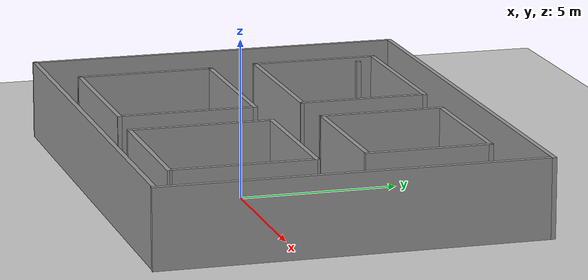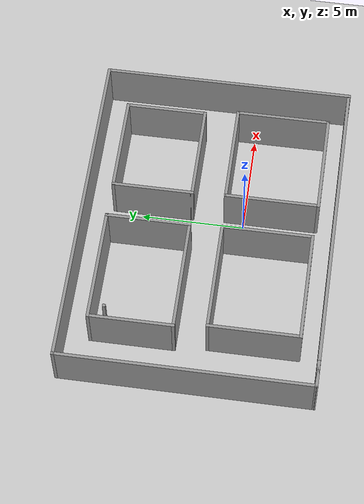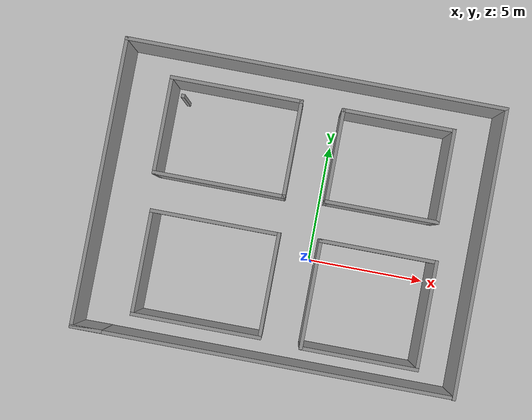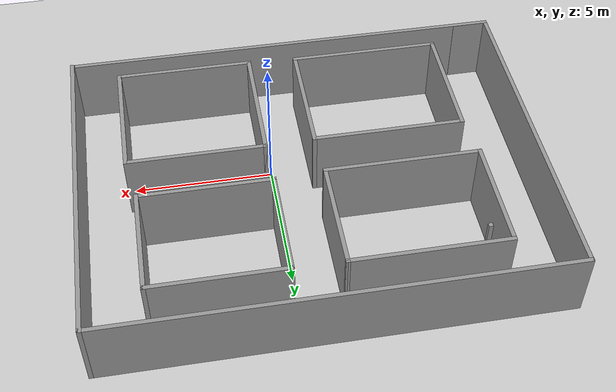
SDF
<sdf version="1.6">
 <world name="default">
  <light name="sun" type="directional">
   <pose>0 0 10 0 -0 0</pose>
   <diffuse>0.8 0.8 0.8 1</diffuse>
   <specular>0.2 0.2 0.2 1</specular>
   <attenuation>
    <range>1000</range>
    <constant>0.9</constant>
    <linear>0.01</linear>
    <quadratic>0.001</quadratic>
   </attenuation>
   <direction>-0.5 0.1 -0.9</direction>
   <spot><inner_angle>0</inner_angle><outer_angle>0</outer_angle><falloff>0</falloff></spot>
  </light>
  <model name="ground_plane">
   <static>1</static>
   <link name="link">
    <collision name="collision">
     <geometry><plane><normal>0 0 1</normal><size>100 100</size></plane></geometry>
     <surface>
      <contact><collide_bitmask>65535</collide_bitmask></contact>
      <friction><ode><mu>100</mu><mu2>50</mu2></ode></friction>
     </surface>
    </collision>
    <visual name="visual">
     <cast_shadows>0</cast_shadows>
     <geometry><plane><normal>0 0 1</normal><size>100 100</size></plane></geometry>
     <material>
      <script><uri>file://media/materials/scripts/gazebo.material</uri><name>Gazebo/Grey</name></script>
     </material>
    </visual>
   </link>
  </model>
  <gravity>0 0 -9.8</gravity>
  <magnetic_field>6e-06 2.3e-05 -4.2e-05</magnetic_field>
  <atmosphere type="adiabatic"/>
  <physics type="ode">
   <max_step_size>0.001</max_step_size>
   <real_time_factor>1</real_time_factor>
   <real_time_update_rate>1000</real_time_update_rate>
  </physics>
  <scene><ambient>0.4 0.4 0.4 1</ambient><background>0.7 0.7 0.7 1</background><shadows>1</shadows></scene>
  <spherical_coordinates>
   <surface_model>EARTH_WGS84</surface_model>
   <latitude_deg>0</latitude_deg>
   <longitude_deg>0</longitude_deg>
   <elevation>0</elevation>
   <heading_deg>0</heading_deg>
  </spherical_coordinates>
  <model name="crossing">
   <pose>-1.16484 1.6135 0 0 -0 0</pose>
   <link name="Wall_0">
    <collision name="Wall_0_Collision">
     <geometry><box><size>16.1388 0.15 2.5</size></box></geometry>
     <pose>0 0 1.25 0 -0 0</pose>
    </collision>
    <visual name="Wall_0_Visual">
     <pose>0 0 1.25 0 -0 0</pose>
     <geometry><box><size>16.1388 0.15 2.5</size></box></geometry>
     <material>
      <script><uri>file://media/materials/scripts/gazebo.material</uri><name>Gazebo/Grey</name></script>
      <ambient>1 1 1 1</ambient>
     </material>
     <meta><layer>0</layer></meta>
    </visual>
    <pose>0.011836 6.0615 0 0 -0 0</pose>
   </link>
   <link name="Wall_1">
    <collision name="Wall_1_Collision">
     <geometry><box><size>12.2734 0.15 2.5</size></box></geometry>
     <pose>0 0 1.25 0 -0 0</pose>
    </collision>
    <visual name="Wall_1_Visual">
     <pose>0 0 1.25 0 -0 0</pose>
     <geometry><box><size>12.2734 0.15 2.5</size></box></geometry>
     <material>
      <script><uri>file://media/materials/scripts/gazebo.material</uri><name>Gazebo/Grey</name></script>
      <ambient>1 1 1 1</ambient>
     </material>
     <meta><layer>0</layer></meta>
    </visual>
    <pose>8.00584 -0 0 0 -0 -1.5708</pose>
   </link>
   <link name="Wall_28">
    <collision name="Wall_28_Collision">
     <geometry><box><size>0.15 0.15 2.5</size></box></geometry>
     <pose>0 0 1.25 0 -0 0</pose>
    </collision>
    <visual name="Wall_28_Visual">
     <pose>0 0 1.25 0 -0 0</pose>
     <geometry><box><size>0.15 0.15 2.5</size></box></geometry>
     <material>
      <script><uri>file://media/materials/scripts/gazebo.material</uri><name>Gazebo/Grey</name></script>
      <ambient>1 1 1 1</ambient>
     </material>
     <meta><layer>0</layer></meta>
    </visual>
    <pose>-5.25214 4.135 0 0 -0 0</pose>
   </link>
   <link name="Wall_35">
    <collision name="Wall_35_Collision">
     <geometry><box><size>5.482 0.15 2.5</size></box></geometry>
     <pose>0 0 1.25 0 -0 0</pose>
    </collision>
    <visual name="Wall_35_Visual">
     <pose>0 0 1.25 0 -0 0</pose>
     <geometry><box><size>5.482 0.15 2.5</size></box></geometry>
     <material>
      <script><uri>file://media/materials/scripts/gazebo.material</uri><name>Gazebo/Grey</name></script>
      <ambient>1 1 1 1</ambient>
     </material>
     <meta><layer>0</layer></meta>
    </visual>
    <pose>-2.96816 -5.0805 0 0 -0 0</pose>
   </link>
   <link name="Wall_36">
    <collision name="Wall_36_Collision">
     <geometry><box><size>4.475 0.15 2.5</size></box></geometry>
     <pose>0 0 1.25 0 -0 0</pose>
    </collision>
    <visual name="Wall_36_Visual">
     <pose>0 0 1.25 0 -0 0</pose>
     <geometry><box><size>4.475 0.15 2.5</size></box></geometry>
     <material>
      <script><uri>file://media/materials/scripts/gazebo.material</uri><name>Gazebo/Grey</name></script>
      <ambient>1 1 1 1</ambient>
     </material>
     <meta><layer>0</layer></meta>
    </visual>
    <pose>-0.302164 -2.918 0 0 -0 1.5708</pose>
   </link>
   <link name="Wall_37">
    <collision name="Wall_37_Collision">
     <geometry><box><size>5.482 0.15 2.5</size></box></geometry>
     <pose>0 0 1.25 0 -0 0</pose>
    </collision>
    <visual name="Wall_37_Visual">
     <pose>0 0 1.25 0 -0 0</pose>
     <geometry><box><size>5.482 0.15 2.5</size></box></geometry>
     <material>
      <script><uri>file://media/materials/scripts/gazebo.material</uri><name>Gazebo/Grey</name></script>
      <ambient>1 1 1 1</ambient>
     </material>
     <meta><layer>0</layer></meta>
    </visual>
    <pose>-2.96816 -0.7555 0 0 -0 3.14159</pose>
   </link>
   <link name="Wall_38">
    <collision name="Wall_38_Collision">
     <geometry><box><size>4.475 0.15 2.5</size></box></geometry>
     <pose>0 0 1.25 0 -0 0</pose>
    </collision>
    <visual name="Wall_38_Visual">
     <pose>0 0 1.25 0 -0 0</pose>
     <geometry><box><size>4.475 0.15 2.5</size></box></geometry>
     <material>
      <script><uri>file://media/materials/scripts/gazebo.material</uri><name>Gazebo/Grey</name></script>
      <ambient>1 1 1 1</ambient>
     </material>
     <meta><layer>0</layer></meta>
    </visual>
    <pose>-5.63416 -2.918 0 0 -0 -1.5708</pose>
   </link>
   <link name="Wall_40">
    <collision name="Wall_40_Collision">
     <geometry><box><size>5 0.15 2.5</size></box></geometry>
     <pose>0 0 1.25 0 -0 0</pose>
    </collision>
    <visual name="Wall_40_Visual">
     <pose>0 0 1.25 0 -0 0</pose>
     <geometry><box><size>5 0.15 2.5</size></box></geometry>
     <material>
      <script><uri>file://media/materials/scripts/gazebo.material</uri><name>Gazebo/Grey</name></script>
      <ambient>1 1 1 1</ambient>
     </material>
     <meta><layer>0</layer></meta>
    </visual>
    <pose>3.86984 -5.1765 0 0 -0 3.14159</pose>
   </link>
   <link name="Wall_41">
    <collision name="Wall_41_Collision">
     <geometry><box><size>4.634 0.15 2.5</size></box></geometry>
     <pose>0 0 1.25 0 -0 0</pose>
    </collision>
    <visual name="Wall_41_Visual">
     <pose>0 0 1.25 0 -0 0</pose>
     <geometry><box><size>4.634 0.15 2.5</size></box></geometry>
     <material>
      <script><uri>file://media/materials/scripts/gazebo.material</uri><name>Gazebo/Grey</name></script>
      <ambient>1 1 1 1</ambient>
     </material>
     <meta><layer>0</layer></meta>
    </visual>
    <pose>1.44484 -2.9345 0 0 -0 1.5708</pose>
   </link>
   <link name="Wall_42">
    <collision name="Wall_42_Collision">
     <geometry><box><size>4.995 0.15 2.5</size></box></geometry>
     <pose>0 0 1.25 0 -0 0</pose>
    </collision>
    <visual name="Wall_42_Visual">
     <pose>0 0 1.25 0 -0 0</pose>
     <geometry><box><size>4.995 0.15 2.5</size></box></geometry>
     <material>
      <script><uri>file://media/materials/scripts/gazebo.material</uri><name>Gazebo/Grey</name></script>
      <ambient>1 1 1 1</ambient>
     </material>
     <meta><layer>0</layer></meta>
    </visual>
    <pose>3.86734 -0.6925 0 0 -0 0</pose>
   </link>
   <link name="Wall_43">
    <collision name="Wall_43_Collision">
     <geometry><box><size>4.6337 0.15 2.5</size></box></geometry>
     <pose>0 0 1.25 0 -0 0</pose>
    </collision>
    <visual name="Wall_43_Visual">
     <pose>0 0 1.25 0 -0 0</pose>
     <geometry><box><size>4.6337 0.15 2.5</size></box></geometry>
     <material>
      <script><uri>file://media/materials/scripts/gazebo.material</uri><name>Gazebo/Grey</name></script>
      <ambient>1 1 1 1</ambient>
     </material>
     <meta><layer>0</layer></meta>
    </visual>
    <pose>6.29234 -2.9345 0 0 -0 -1.56968</pose>
   </link>
   <link name="Wall_45">
    <collision name="Wall_45_Collision">
     <geometry><box><size>4.79952 0.15 2.5</size></box></geometry>
     <pose>0 0 1.25 0 -0 0</pose>
    </collision>
    <visual name="Wall_45_Visual">
     <pose>0 0 1.25 0 -0 0</pose>
     <geometry><box><size>4.79952 0.15 2.5</size></box></geometry>
     <material>
      <script><uri>file://media/materials/scripts/gazebo.material</uri><name>Gazebo/Grey</name></script>
      <ambient>1 1 1 1</ambient>
     </material>
     <meta><layer>0</layer></meta>
    </visual>
    <pose>3.70434 4.7805 0 0 -0 3.14159</pose>
   </link>
   <link name="Wall_46">
    <collision name="Wall_46_Collision">
     <geometry><box><size>4 0.15 2.5</size></box></geometry>
     <pose>0 0 1.25 0 -0 0</pose>
    </collision>
    <visual name="Wall_46_Visual">
     <pose>0 0 1.25 0 -0 0</pose>
     <geometry><box><size>4 0.15 2.5</size></box></geometry>
     <material>
      <script><uri>file://media/materials/scripts/gazebo.material</uri><name>Gazebo/Grey</name></script>
      <ambient>1 1 1 1</ambient>
     </material>
     <meta><layer>0</layer></meta>
    </visual>
    <pose>1.37984 2.8555 0 0 -0 -1.5708</pose>
   </link>
   <link name="Wall_47">
    <collision name="Wall_47_Collision">
     <geometry><box><size>4.79933 0.15 2.5</size></box></geometry>
     <pose>0 0 1.25 0 -0 0</pose>
    </collision>
    <visual name="Wall_47_Visual">
     <pose>0 0 1.25 0 -0 0</pose>
     <geometry><box><size>4.79933 0.15 2.5</size></box></geometry>
     <material>
      <script><uri>file://media/materials/scripts/gazebo.material</uri><name>Gazebo/Grey</name></script>
      <ambient>1 1 1 1</ambient>
     </material>
     <meta><layer>0</layer></meta>
    </visual>
    <pose>3.7045 0.930618 0 0 -0 5.1e-05</pose>
   </link>
   <link name="Wall_48">
    <collision name="Wall_48_Collision">
     <geometry><box><size>4 0.15 2.5</size></box></geometry>
     <pose>0 0 1.25 0 -0 0</pose>
    </collision>
    <visual name="Wall_48_Visual">
     <pose>0 0 1.25 0 -0 0</pose>
     <geometry><box><size>4 0.15 2.5</size></box></geometry>
     <material>
      <script><uri>file://media/materials/scripts/gazebo.material</uri><name>Gazebo/Grey</name></script>
      <ambient>1 1 1 1</ambient>
     </material>
     <meta><layer>0</layer></meta>
    </visual>
    <pose>6.029 2.85562 0 0 -0 1.57088</pose>
   </link>
   <link name="Wall_51">
    <collision name="Wall_51_Collision">
     <geometry><box><size>5.60004 0.15 2.5</size></box></geometry>
     <pose>0 0 1.25 0 -0 0</pose>
    </collision>
    <visual name="Wall_51_Visual">
     <pose>0 0 1.25 0 -0 0</pose>
     <geometry><box><size>5.60004 0.15 2.5</size></box></geometry>
     <material>
      <script><uri>file://media/materials/scripts/gazebo.material</uri><name>Gazebo/Grey</name></script>
      <ambient>1 1 1 1</ambient>
     </material>
     <meta><layer>0</layer></meta>
    </visual>
    <pose>-3.12316 4.8095 0 0 -0 0</pose>
   </link>
   <link name="Wall_52">
    <collision name="Wall_52_Collision">
     <geometry><box><size>4.15 0.15 2.5</size></box></geometry>
     <pose>0 0 1.25 0 -0 0</pose>
    </collision>
    <visual name="Wall_52_Visual">
     <pose>0 0 1.25 0 -0 0</pose>
     <geometry><box><size>4.15 0.15 2.5</size></box></geometry>
     <material>
      <script><uri>file://media/materials/scripts/gazebo.material</uri><name>Gazebo/Grey</name></script>
      <ambient>1 1 1 1</ambient>
     </material>
     <meta><layer>0</layer></meta>
    </visual>
    <pose>-0.398664 2.8095 0 0 -0 -1.57105</pose>
   </link>
   <link name="Wall_53">
    <collision name="Wall_53_Collision">
     <geometry><box><size>5.599 0.15 2.5</size></box></geometry>
     <pose>0 0 1.25 0 -0 0</pose>
    </collision>
    <visual name="Wall_53_Visual">
     <pose>0 0 1.25 0 -0 0</pose>
     <geometry><box><size>5.599 0.15 2.5</size></box></geometry>
     <material>
      <script><uri>file://media/materials/scripts/gazebo.material</uri><name>Gazebo/Grey</name></script>
      <ambient>1 1 1 1</ambient>
     </material>
     <meta><layer>0</layer></meta>
    </visual>
    <pose>-3.12366 0.8095 0 0 -0 3.14159</pose>
   </link>
   <link name="Wall_56">
    <collision name="Wall_56_Collision">
     <geometry><box><size>4.15 0.15 2.5</size></box></geometry>
     <pose>0 0 1.25 0 -0 0</pose>
    </collision>
    <visual name="Wall_56_Visual">
     <pose>0 0 1.25 0 -0 0</pose>
     <geometry><box><size>4.15 0.15 2.5</size></box></geometry>
     <material>
      <script><uri>file://media/materials/scripts/gazebo.material</uri><name>Gazebo/Grey</name></script>
      <ambient>1 1 1 1</ambient>
     </material>
     <meta><layer>0</layer></meta>
    </visual>
    <pose>-5.84816 2.8095 0 0 -0 1.5708</pose>
   </link>
   <link name="Wall_6">
    <collision name="Wall_6_Collision">
     <geometry><box><size>12.25 0.15 2.5</size></box></geometry>
     <pose>0 0 1.25 0 -0 0</pose>
    </collision>
    <visual name="Wall_6_Visual">
     <pose>0 0 1.25 0 -0 0</pose>
     <geometry><box><size>12.25 0.15 2.5</size></box></geometry>
     <material>
      <script><uri>file://media/materials/scripts/gazebo.material</uri><name>Gazebo/Grey</name></script>
      <ambient>1 1 1 1</ambient>
     </material>
     <meta><layer>0</layer></meta>
    </visual>
    <pose>-7.99397 0.011353 0 0 -0 1.56885</pose>
   </link>
   <link name="Wall_8">
    <collision name="Wall_8_Collision">
     <geometry><box><size>1.36005 0.15 2.5</size></box></geometry>
     <pose>0 0 1.25 0 -0 0</pose>
    </collision>
    <visual name="Wall_8_Visual">
     <pose>0 0 1.25 0 -0 0</pose>
     <geometry><box><size>1.36005 0.15 2.5</size></box></geometry>
     <material>
      <script><uri>file://media/materials/scripts/gazebo.material</uri><name>Gazebo/Grey</name></script>
      <ambient>1 1 1 1</ambient>
     </material>
     <meta><layer>0</layer></meta>
    </visual>
    <pose>-7.40076 -6.03505 0 0 -0 -3.1354</pose>
   </link>
   <link name="Wall_9">
    <collision name="Wall_9_Collision">
     <geometry><box><size>16 0.15 2.5</size></box></geometry>
     <pose>0 0 1.25 0 -0 0</pose>
    </collision>
    <visual name="Wall_9_Visual">
     <pose>0 0 1.25 0 -0 0</pose>
     <geometry><box><size>16 0.15 2.5</size></box></geometry>
     <material>
      <script><uri>file://media/materials/scripts/gazebo.material</uri><name>Gazebo/Grey</name></script>
      <ambient>1 1 1 1</ambient>
     </material>
     <meta><layer>0</layer></meta>
    </visual>
    <pose>-0.080772 -6.03879 0 0 -0 0</pose>
   </link>
   <static>1</static>
  </model>
 </world>
</sdf>
